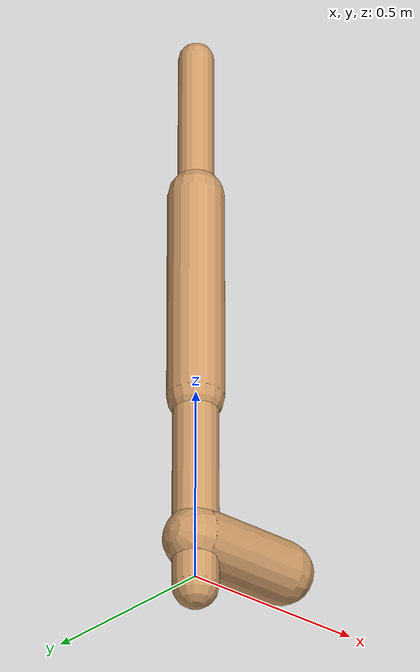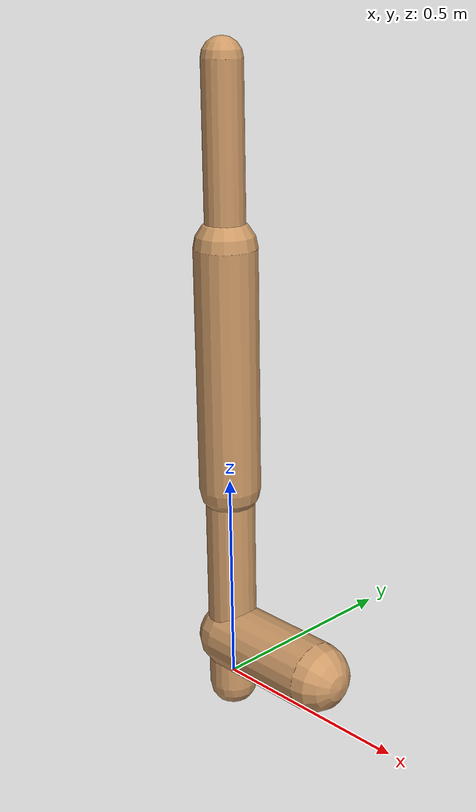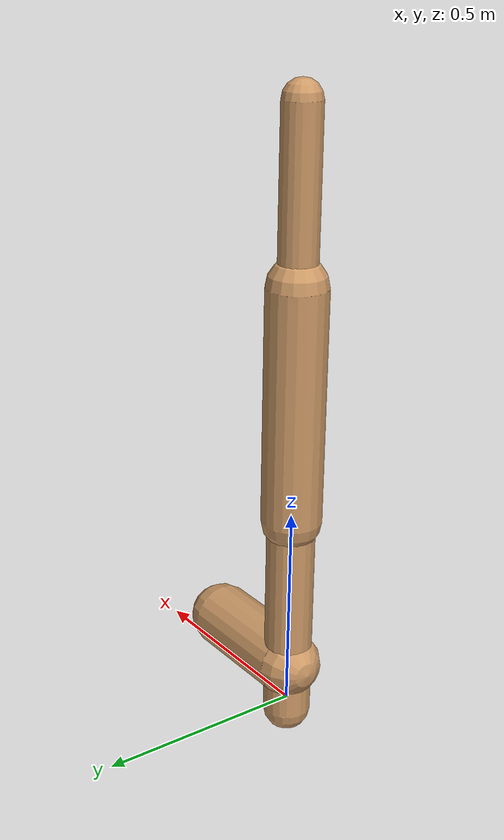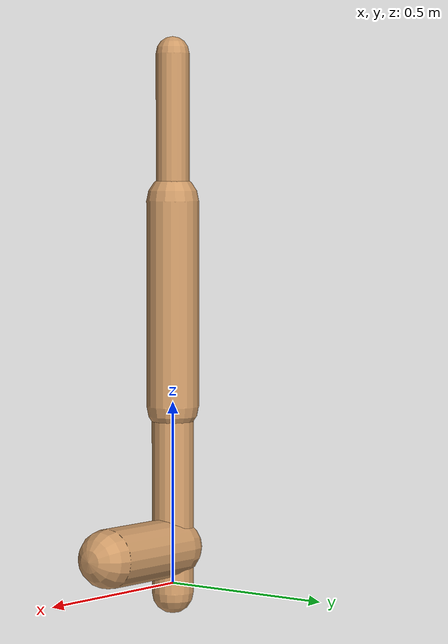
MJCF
<mujoco model="walker2d">
  <compiler angle="degree" coordinate="global" inertiafromgeom="true" />
  <default>
    <joint armature="0.01" damping=".1" limited="true" />
    <geom conaffinity="0" condim="3" contype="1" density="1000" friction="0.8 .1 .1" rgba="0.8 0.6 .4 1" />
  </default>
  <option integrator="RK4" timestep="0.002" />
  <worldbody>

    <body name="torso" pos="0 0 0.23730308026513192">
      <joint armature="0" axis="1 0 0" damping="0" limited="false" name="ignorex" pos="0 0 0" stiffness="0" type="slide" />
      <joint armature="0" axis="0 0 1" damping="0" limited="false" name="ignorez" pos="0 0 0" ref="1.25" stiffness="0" type="slide" />
      <joint armature="0" axis="0 1 0" damping="0" limited="false" name="ignorey" pos="0 0 0" stiffness="0" type="hinge" />
      <geom fromto="0 0 1.45 0 0 1.05" name="torso_geom" size="0.0455535217449521" type="capsule" />
      <body name="thigh">
        <joint axis="0 -1 0" name="thigh_joint" pos="0 0 1.05" range="-150 0" type="hinge" />
        <geom fromto="0.0 0.0 1.05 0.0 0.0 0.487593277769148" name="thigh_geom" size="0.07171105213701116" type="capsule" />
        <body name="leg" pos="0.0 0.0 -0.11240672223085196">
          <joint axis="0 -1 0" name="leg_joint" pos="0 0 0.6" range="-150 0" type="hinge" />
          <geom fromto="0.0 0.0 0.6 0.0 0.0 -0.024896358034279947" name="leg_geom" size="0.05736884170960893" type="capsule" />
          <body name="foot" pos="0.0 0.0 -0.12489635803427995">
            <joint axis="0 -1 0" name="foot_joint" pos="0 0 0.1" range="-45 45" type="hinge" />
            <geom fromto="-0.0 0.0 0.1 0.274864612925023 0.0 0.1" name="foot_geom" size="0.08065102225782178" type="capsule" />
          </body>
        </body>
      </body>

      <body name="thigh_left">
        <joint axis="0 -1 0" name="thigh_left_joint" pos="0 0 1.05" range="-150 0" type="hinge" />
        <geom fromto="0.0 0.0 1.05 0.0 0.0 0.487593277769148" name="thigh_left_geom" rgba=".7 .3 .6 1" size="0.07171105213701116" type="capsule" />
        <body name="leg_left" pos="0.0 0.0 -0.11240672223085196">
          <joint axis="0 -1 0" name="leg_left_joint" pos="0 0 0.6" range="-150 0" type="hinge" />
          <geom fromto="0.0 0.0 0.6 0.0 0.0 -0.024896358034279947" name="leg_left_geom" rgba=".7 .3 .6 1" size="0.05736884170960893" type="capsule" />
          <body name="foot_left" pos="0.0 0.0 -0.12489635803427995">
            <joint axis="0 -1 0" name="foot_left_joint" pos="0 0 0.1" range="-45 45" type="hinge" />
            <geom fromto="-0.0 0.0 0.1 0.274864612925023 0.0 0.1" name="foot_left_geom" rgba=".7 .3 .6 1" size="0.08065102225782178" type="capsule" />
          </body>
        </body>
      </body>
    </body>
  </worldbody>
  <actuator>

    <motor ctrllimited="true" ctrlrange="-1.0 1.0" gear="100" joint="thigh_joint" />
    <motor ctrllimited="true" ctrlrange="-1.0 1.0" gear="100" joint="leg_joint" />
    <motor ctrllimited="true" ctrlrange="-1.0 1.0" gear="100" joint="foot_joint" />
    <motor ctrllimited="true" ctrlrange="-1.0 1.0" gear="100" joint="thigh_left_joint" />
    <motor ctrllimited="true" ctrlrange="-1.0 1.0" gear="100" joint="leg_left_joint" />
    <motor ctrllimited="true" ctrlrange="-1.0 1.0" gear="100" joint="foot_left_joint" />

  </actuator>
</mujoco>
